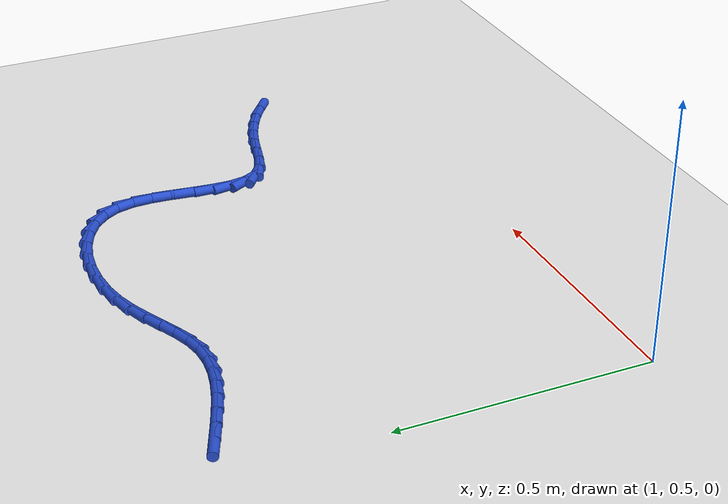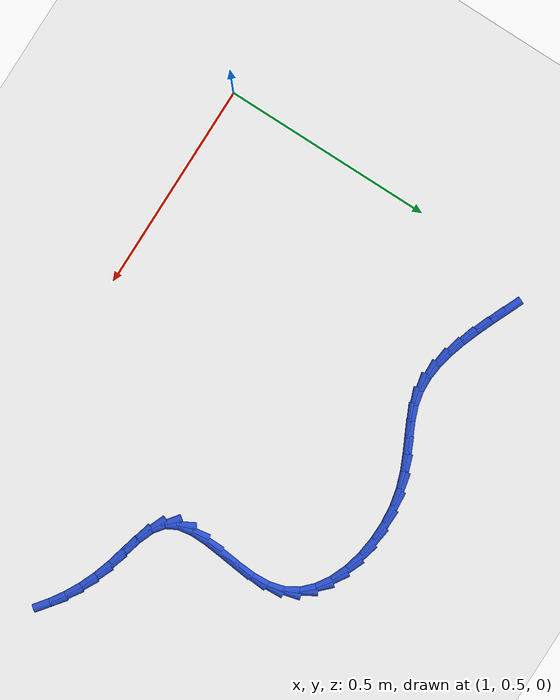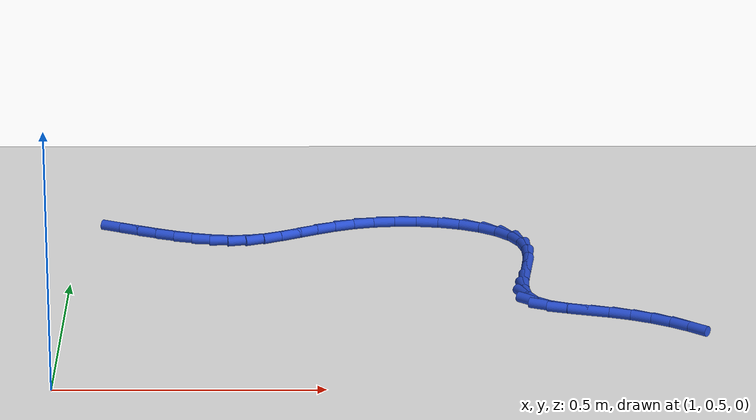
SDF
<sdf version="1.6">
 <world name="default">
  <model name="ground_plane">
   <static>1</static>
   <link name="link">
    <collision name="collision">
     <geometry><plane><normal>0 0 1</normal><size>100 100</size></plane></geometry>
     <surface><friction><ode><mu>100</mu><mu2>50</mu2></ode></friction></surface>
    </collision>
    <visual name="visual">
     <cast_shadows>0</cast_shadows>
     <geometry><plane><normal>0 0 1</normal><size>100 100</size></plane></geometry>
     <material>
      <script><uri>file://media/materials/scripts/gazebo.material</uri><name>Gazebo/WhiteGlow</name></script>
     </material>
    </visual>
   </link>
  </model>
  <model name="line">
   <link name="link_57">
    <pose>1.0819380080485415 1.2746366933174436 0.01 0 1.57 -0.4093604075994397</pose>
    <collision name="collision">
     <geometry><cylinder><radius>0.01</radius><length>0.08</length></cylinder></geometry>
    </collision>
    <visual name="visual">
     <material>
      <script><name>Gazebo/Blue</name><uri>file://media/materials/scripts/gazebo.material</uri></script>
     </material>
     <geometry><cylinder><radius>0.01</radius><length>0.08</length></cylinder></geometry>
    </visual>
   </link>
   <link name="link_58">
    <pose>1.1194701349047156 1.2583525918432656 0.01 0 1.57 -0.3923797090086689</pose>
    <collision name="collision">
     <geometry><cylinder><radius>0.01</radius><length>0.08</length></cylinder></geometry>
    </collision>
    <visual name="visual">
     <material>
      <script><name>Gazebo/Blue</name><uri>file://media/materials/scripts/gazebo.material</uri></script>
     </material>
     <geometry><cylinder><radius>0.01</radius><length>0.08</length></cylinder></geometry>
    </visual>
   </link>
   <link name="link_59">
    <pose>1.1567758106679884 1.2429140317470744 0.01 0 1.57 -0.35597065690690527</pose>
    <collision name="collision">
     <geometry><cylinder><radius>0.01</radius><length>0.08</length></cylinder></geometry>
    </collision>
    <visual name="visual">
     <material>
      <script><name>Gazebo/Blue</name><uri>file://media/materials/scripts/gazebo.material</uri></script>
     </material>
     <geometry><cylinder><radius>0.01</radius><length>0.08</length></cylinder></geometry>
    </visual>
   </link>
   <link name="link_60">
    <pose>1.1937448108954098 1.2291686034333198 0.01 0 1.57 -0.29767672948706325</pose>
    <collision name="collision">
     <geometry><cylinder><radius>0.01</radius><length>0.08</length></cylinder></geometry>
    </collision>
    <visual name="visual">
     <material>
      <script><name>Gazebo/Blue</name><uri>file://media/materials/scripts/gazebo.material</uri></script>
     </material>
     <geometry><cylinder><radius>0.01</radius><length>0.08</length></cylinder></geometry>
    </visual>
   </link>
   <link name="link_61">
    <pose>1.2302669111440323 1.2179638973064522 0.01 0 1.57 -0.21400547275993415</pose>
    <collision name="collision">
     <geometry><cylinder><radius>0.01</radius><length>0.08</length></cylinder></geometry>
    </collision>
    <visual name="visual">
     <material>
      <script><name>Gazebo/Blue</name><uri>file://media/materials/scripts/gazebo.material</uri></script>
     </material>
     <geometry><cylinder><radius>0.01</radius><length>0.08</length></cylinder></geometry>
    </visual>
   </link>
   <link name="link_62">
    <pose>1.2662318869709048 1.2101475037709202 0.01 0 1.57 -0.10109136592613818</pose>
    <collision name="collision">
     <geometry><cylinder><radius>0.01</radius><length>0.08</length></cylinder></geometry>
    </collision>
    <visual name="visual">
     <material>
      <script><name>Gazebo/Blue</name><uri>file://media/materials/scripts/gazebo.material</uri></script>
     </material>
     <geometry><cylinder><radius>0.01</radius><length>0.08</length></cylinder></geometry>
    </visual>
   </link>
   <link name="link_63">
    <pose>1.3015295139330803 1.206567013231175 0.01 0 1.57 0.043512509898410885</pose>
    <collision name="collision">
     <geometry><cylinder><radius>0.01</radius><length>0.08</length></cylinder></geometry>
    </collision>
    <visual name="visual">
     <material>
      <script><name>Gazebo/Blue</name><uri>file://media/materials/scripts/gazebo.material</uri></script>
     </material>
     <geometry><cylinder><radius>0.01</radius><length>0.08</length></cylinder></geometry>
    </visual>
   </link>
   <link name="link_64">
    <pose>1.3360495675876076 1.2080700160916658 0.01 0 1.57 0.21517340458693326</pose>
    <collision name="collision">
     <geometry><cylinder><radius>0.01</radius><length>0.08</length></cylinder></geometry>
    </collision>
    <visual name="visual">
     <material>
      <script><name>Gazebo/Blue</name><uri>file://media/materials/scripts/gazebo.material</uri></script>
     </material>
     <geometry><cylinder><radius>0.01</radius><length>0.08</length></cylinder></geometry>
    </visual>
   </link>
   <link name="link_65">
    <pose>1.3697058977985597 1.2154258390813983 0.01 0 1.57 0.3616135943402697</pose>
    <collision name="collision">
     <geometry><cylinder><radius>0.01</radius><length>0.08</length></cylinder></geometry>
    </collision>
    <visual name="visual">
     <material>
      <script><name>Gazebo/Blue</name><uri>file://media/materials/scripts/gazebo.material</uri></script>
     </material>
     <geometry><cylinder><radius>0.01</radius><length>0.08</length></cylinder></geometry>
    </visual>
   </link>
   <link name="link_66">
    <pose>1.4028551219848808 1.2279644064916635 0.01 0 1.57 0.4417007609927249</pose>
    <collision name="collision">
     <geometry><cylinder><radius>0.01</radius><length>0.08</length></cylinder></geometry>
    </collision>
    <visual name="visual">
     <material>
      <script><name>Gazebo/Blue</name><uri>file://media/materials/scripts/gazebo.material</uri></script>
     </material>
     <geometry><cylinder><radius>0.01</radius><length>0.08</length></cylinder></geometry>
    </visual>
   </link>
   <link name="link_67">
    <pose>1.4362425638824488 1.2437519890013964 0.01 0 1.57 0.46056815452773037</pose>
    <collision name="collision">
     <geometry><cylinder><radius>0.01</radius><length>0.08</length></cylinder></geometry>
    </collision>
    <visual name="visual">
     <material>
      <script><name>Gazebo/Blue</name><uri>file://media/materials/scripts/gazebo.material</uri></script>
     </material>
     <geometry><cylinder><radius>0.01</radius><length>0.08</length></cylinder></geometry>
    </visual>
   </link>
   <link name="link_68">
    <pose>1.470626751778296 1.260811930334041 0.01 0 1.57 0.4249892553250078</pose>
    <collision name="collision">
     <geometry><cylinder><radius>0.01</radius><length>0.08</length></cylinder></geometry>
    </collision>
    <visual name="visual">
     <material>
      <script><name>Gazebo/Blue</name><uri>file://media/materials/scripts/gazebo.material</uri></script>
     </material>
     <geometry><cylinder><radius>0.01</radius><length>0.08</length></cylinder></geometry>
    </visual>
   </link>
   <link name="link_69">
    <pose>1.5067662139594549 1.2771675742130422 0.01 0 1.57 0.34003690342998005</pose>
    <collision name="collision">
     <geometry><cylinder><radius>0.01</radius><length>0.08</length></cylinder></geometry>
    </collision>
    <visual name="visual">
     <material>
      <script><name>Gazebo/Blue</name><uri>file://media/materials/scripts/gazebo.material</uri></script>
     </material>
     <geometry><cylinder><radius>0.01</radius><length>0.08</length></cylinder></geometry>
    </visual>
   </link>
   <link name="link_70">
    <pose>1.5454194787129585 1.2908422643618451 0.01 0 1.57 0.21819469763228347</pose>
    <collision name="collision">
     <geometry><cylinder><radius>0.01</radius><length>0.08</length></cylinder></geometry>
    </collision>
    <visual name="visual">
     <material>
      <script><name>Gazebo/Blue</name><uri>file://media/materials/scripts/gazebo.material</uri></script>
     </material>
     <geometry><cylinder><radius>0.01</radius><length>0.08</length></cylinder></geometry>
    </visual>
   </link>
   <link name="link_71">
    <pose>1.5870935605710612 1.300082433772248 0.01 0 1.57 0.09835073592465911</pose>
    <collision name="collision">
     <geometry><cylinder><radius>0.01</radius><length>0.08</length></cylinder></geometry>
    </collision>
    <visual name="visual">
     <material>
      <script><name>Gazebo/Blue</name><uri>file://media/materials/scripts/gazebo.material</uri></script>
     </material>
     <geometry><cylinder><radius>0.01</radius><length>0.08</length></cylinder></geometry>
    </visual>
   </link>
   <link name="link_72">
    <pose>1.630867034209466 1.3044015220964715 0.01 0 1.57 -0.014439261064600915</pose>
    <collision name="collision">
     <geometry><cylinder><radius>0.01</radius><length>0.08</length></cylinder></geometry>
    </collision>
    <visual name="visual">
     <material>
      <script><name>Gazebo/Blue</name><uri>file://media/materials/scripts/gazebo.material</uri></script>
     </material>
     <geometry><cylinder><radius>0.01</radius><length>0.08</length></cylinder></geometry>
    </visual>
   </link>
   <link name="link_73">
    <pose>1.6753148419752804 1.3037596839896792 0.01 0 1.57 -0.12840980845523334</pose>
    <collision name="collision">
     <geometry><cylinder><radius>0.01</radius><length>0.08</length></cylinder></geometry>
    </collision>
    <visual name="visual">
     <material>
      <script><name>Gazebo/Blue</name><uri>file://media/materials/scripts/gazebo.material</uri></script>
     </material>
     <geometry><cylinder><radius>0.01</radius><length>0.08</length></cylinder></geometry>
    </visual>
   </link>
   <link name="link_74">
    <pose>1.7190113587376663 1.2981175774522316 0.01 0 1.57 -0.25180853218614735</pose>
    <collision name="collision">
     <geometry><cylinder><radius>0.01</radius><length>0.08</length></cylinder></geometry>
    </collision>
    <visual name="visual">
     <material>
      <script><name>Gazebo/Blue</name><uri>file://media/materials/scripts/gazebo.material</uri></script>
     </material>
     <geometry><cylinder><radius>0.01</radius><length>0.08</length></cylinder></geometry>
    </visual>
   </link>
   <link name="link_75">
    <pose>1.760530959365785 1.2874358604844882 0.01 0 1.57 -0.39393451230488924</pose>
    <collision name="collision">
     <geometry><cylinder><radius>0.01</radius><length>0.08</length></cylinder></geometry>
    </collision>
    <visual name="visual">
     <material>
      <script><name>Gazebo/Blue</name><uri>file://media/materials/scripts/gazebo.material</uri></script>
     </material>
     <geometry><cylinder><radius>0.01</radius><length>0.08</length></cylinder></geometry>
    </visual>
   </link>
   <link name="link_76">
    <pose>1.7984480187287977 1.2716751910868096 0.01 0 1.57 -0.5656392093929837</pose>
    <collision name="collision">
     <geometry><cylinder><radius>0.01</radius><length>0.08</length></cylinder></geometry>
    </collision>
    <visual name="visual">
     <material>
      <script><name>Gazebo/Blue</name><uri>file://media/materials/scripts/gazebo.material</uri></script>
     </material>
     <geometry><cylinder><radius>0.01</radius><length>0.08</length></cylinder></geometry>
    </visual>
   </link>
   <link name="link_77">
    <pose>1.831336911695866 1.2507962272595556 0.01 0 1.57 -0.7778037170647645</pose>
    <collision name="collision">
     <geometry><cylinder><radius>0.01</radius><length>0.08</length></cylinder></geometry>
    </collision>
    <visual name="visual">
     <material>
      <script><name>Gazebo/Blue</name><uri>file://media/materials/scripts/gazebo.material</uri></script>
     </material>
     <geometry><cylinder><radius>0.01</radius><length>0.08</length></cylinder></geometry>
    </visual>
   </link>
   <link name="link_78">
    <pose>1.8577720131361513 1.2247596270030874 0.01 0 1.57 -1.0347307177232772</pose>
    <collision name="collision">
     <geometry><cylinder><radius>0.01</radius><length>0.08</length></cylinder></geometry>
    </collision>
    <visual name="visual">
     <material>
      <script><name>Gazebo/Blue</name><uri>file://media/materials/scripts/gazebo.material</uri></script>
     </material>
     <geometry><cylinder><radius>0.01</radius><length>0.08</length></cylinder></geometry>
    </visual>
   </link>
   <link name="link_79">
    <pose>1.8763276979188148 1.1935260483177639 0.01 0 1.57 -1.314156795936497</pose>
    <collision name="collision">
     <geometry><cylinder><radius>0.01</radius><length>0.08</length></cylinder></geometry>
    </collision>
    <visual name="visual">
     <material>
      <script><name>Gazebo/Blue</name><uri>file://media/materials/scripts/gazebo.material</uri></script>
     </material>
     <geometry><cylinder><radius>0.01</radius><length>0.08</length></cylinder></geometry>
    </visual>
   </link>
   <link name="link_80">
    <pose>1.885866117556924 1.157179029040102 0.01 0 1.57 -1.522616961958107</pose>
    <collision name="collision">
     <geometry><cylinder><radius>0.01</radius><length>0.08</length></cylinder></geometry>
    </collision>
    <visual name="visual">
     <material>
      <script><name>Gazebo/Blue</name><uri>file://media/materials/scripts/gazebo.material</uri></script>
     </material>
     <geometry><cylinder><radius>0.01</radius><length>0.08</length></cylinder></geometry>
    </visual>
   </link>
   <link name="link_81">
    <pose>1.8878084882749646 1.1168948206062421 0.01 0 1.57 1.5028237638711182</pose>
    <collision name="collision">
     <geometry><cylinder><radius>0.01</radius><length>0.08</length></cylinder></geometry>
    </collision>
    <visual name="visual">
     <material>
      <script><name>Gazebo/Blue</name><uri>file://media/materials/scripts/gazebo.material</uri></script>
     </material>
     <geometry><cylinder><radius>0.01</radius><length>0.08</length></cylinder></geometry>
    </visual>
   </link>
   <link name="link_82">
    <pose>1.8849170674591547 1.0744222953432883 0.01 0 1.57 1.4559115623039205</pose>
    <collision name="collision">
     <geometry><cylinder><radius>0.01</radius><length>0.08</length></cylinder></geometry>
    </collision>
    <visual name="visual">
     <material>
      <script><name>Gazebo/Blue</name><uri>file://media/materials/scripts/gazebo.material</uri></script>
     </material>
     <geometry><cylinder><radius>0.01</radius><length>0.08</length></cylinder></geometry>
    </visual>
   </link>
   <link name="link_83">
    <pose>1.8799659129878576 1.0315153643560626 0.01 0 1.57 1.4692689374037364</pose>
    <collision name="collision">
     <geometry><cylinder><radius>0.01</radius><length>0.08</length></cylinder></geometry>
    </collision>
    <visual name="visual">
     <material>
      <script><name>Gazebo/Blue</name><uri>file://media/materials/scripts/gazebo.material</uri></script>
     </material>
     <geometry><cylinder><radius>0.01</radius><length>0.08</length></cylinder></geometry>
    </visual>
   </link>
   <link name="link_84">
    <pose>1.8757290827394386 0.9899279387493893 0.01 0 1.57 1.5513656321150724</pose>
    <collision name="collision">
     <geometry><cylinder><radius>0.01</radius><length>0.08</length></cylinder></geometry>
    </collision>
    <visual name="visual">
     <material>
      <script><name>Gazebo/Blue</name><uri>file://media/materials/scripts/gazebo.material</uri></script>
     </material>
     <geometry><cylinder><radius>0.01</radius><length>0.08</length></cylinder></geometry>
    </visual>
   </link>
   <link name="link_85">
    <pose>1.8749806345922635 0.951413929628091 0.01 0 1.57 -1.408550490958973</pose>
    <collision name="collision">
     <geometry><cylinder><radius>0.01</radius><length>0.08</length></cylinder></geometry>
    </collision>
    <visual name="visual">
     <material>
      <script><name>Gazebo/Blue</name><uri>file://media/materials/scripts/gazebo.material</uri></script>
     </material>
     <geometry><cylinder><radius>0.01</radius><length>0.08</length></cylinder></geometry>
    </visual>
   </link>
   <link name="link_86">
    <pose>1.8804946264246958 0.917727248096991 0.01 0 1.57 -1.0781356769096497</pose>
    <collision name="collision">
     <geometry><cylinder><radius>0.01</radius><length>0.08</length></cylinder></geometry>
    </collision>
    <visual name="visual">
     <material>
      <script><name>Gazebo/Blue</name><uri>file://media/materials/scripts/gazebo.material</uri></script>
     </material>
     <geometry><cylinder><radius>0.01</radius><length>0.08</length></cylinder></geometry>
    </visual>
   </link>
   <link name="link_87">
    <pose>1.895045116115102 0.8906218052609131 0.01 0 1.57 -0.6507181890787552</pose>
    <collision name="collision">
     <geometry><cylinder><radius>0.01</radius><length>0.08</length></cylinder></geometry>
    </collision>
    <visual name="visual">
     <material>
      <script><name>Gazebo/Blue</name><uri>file://media/materials/scripts/gazebo.material</uri></script>
     </material>
     <geometry><cylinder><radius>0.01</radius><length>0.08</length></cylinder></geometry>
    </visual>
   </link>
   <link name="link_88">
    <pose>1.9205329517024785 0.871216940949451 0.01 0 1.57 -0.3788224263739764</pose>
    <collision name="collision">
     <geometry><cylinder><radius>0.01</radius><length>0.08</length></cylinder></geometry>
    </collision>
    <visual name="visual">
     <material>
      <script><name>Gazebo/Blue</name><uri>file://media/materials/scripts/gazebo.material</uri></script>
     </material>
     <geometry><cylinder><radius>0.01</radius><length>0.08</length></cylinder></geometry>
    </visual>
   </link>
   <link name="link_89">
    <pose>1.9547064021600142 0.8576142697279223 0.01 0 1.57 -0.2628575783158508</pose>
    <collision name="collision">
     <geometry><cylinder><radius>0.01</radius><length>0.08</length></cylinder></geometry>
    </collision>
    <visual name="visual">
     <material>
      <script><name>Gazebo/Blue</name><uri>file://media/materials/scripts/gazebo.material</uri></script>
     </material>
     <geometry><cylinder><radius>0.01</radius><length>0.08</length></cylinder></geometry>
    </visual>
   </link>
   <link name="link_90">
    <pose>1.9940806436527088 0.8470193039414307 0.01 0 1.57 -0.24748269689805905</pose>
    <collision name="collision">
     <geometry><cylinder><radius>0.01</radius><length>0.08</length></cylinder></geometry>
    </collision>
    <visual name="visual">
     <material>
      <script><name>Gazebo/Blue</name><uri>file://media/materials/scripts/gazebo.material</uri></script>
     </material>
     <geometry><cylinder><radius>0.01</radius><length>0.08</length></cylinder></geometry>
    </visual>
   </link>
   <link name="link_91">
    <pose>2.035170653392199 0.8366374113534671 0.01 0 1.57 -0.31092048991335297</pose>
    <collision name="collision">
     <geometry><cylinder><radius>0.01</radius><length>0.08</length></cylinder></geometry>
    </collision>
    <visual name="visual">
     <material>
      <script><name>Gazebo/Blue</name><uri>file://media/materials/scripts/gazebo.material</uri></script>
     </material>
     <geometry><cylinder><radius>0.01</radius><length>0.08</length></cylinder></geometry>
    </visual>
   </link>
   <link name="link_92">
    <pose>2.0747746166040058 0.8239109650690902 0.01 0 1.57 -0.4008113588093068</pose>
    <collision name="collision">
     <geometry><cylinder><radius>0.01</radius><length>0.08</length></cylinder></geometry>
    </collision>
    <visual name="visual">
     <material>
      <script><name>Gazebo/Blue</name><uri>file://media/materials/scripts/gazebo.material</uri></script>
     </material>
     <geometry><cylinder><radius>0.01</radius><length>0.08</length></cylinder></geometry>
    </visual>
   </link>
   <link name="link_93">
    <pose>2.111937989169559 0.8081629881866321 0.01 0 1.57 -0.48927371327625657</pose>
    <collision name="collision">
     <geometry><cylinder><radius>0.01</radius><length>0.08</length></cylinder></geometry>
    </collision>
    <visual name="visual">
     <material>
      <script><name>Gazebo/Blue</name><uri>file://media/materials/scripts/gazebo.material</uri></script>
     </material>
     <geometry><cylinder><radius>0.01</radius><length>0.08</length></cylinder></geometry>
    </visual>
   </link>
   <link name="link_94">
    <pose>2.1467771253390002 0.7896126953711188 0.01 0 1.57 -0.5745055446254678</pose>
    <collision name="collision">
     <geometry><cylinder><radius>0.01</radius><length>0.08</length></cylinder></geometry>
    </collision>
    <visual name="visual">
     <material>
      <script><name>Gazebo/Blue</name><uri>file://media/materials/scripts/gazebo.material</uri></script>
     </material>
     <geometry><cylinder><radius>0.01</radius><length>0.08</length></cylinder></geometry>
    </visual>
   </link>
   <link name="link_95">
    <pose>2.1794149554623425 0.7684848045598015 0.01 0 1.57 -0.6551505645496015</pose>
    <collision name="collision">
     <geometry><cylinder><radius>0.01</radius><length>0.08</length></cylinder></geometry>
    </collision>
    <visual name="visual">
     <material>
      <script><name>Gazebo/Blue</name><uri>file://media/materials/scripts/gazebo.material</uri></script>
     </material>
     <geometry><cylinder><radius>0.01</radius><length>0.08</length></cylinder></geometry>
    </visual>
   </link>
  </model>
 </world>
</sdf>
